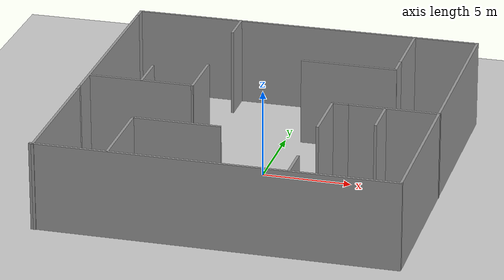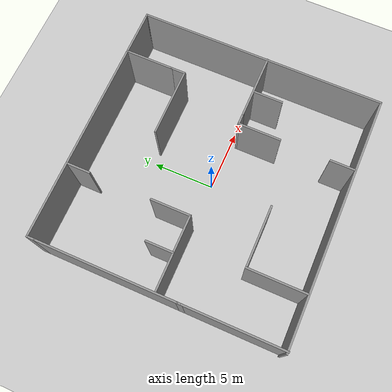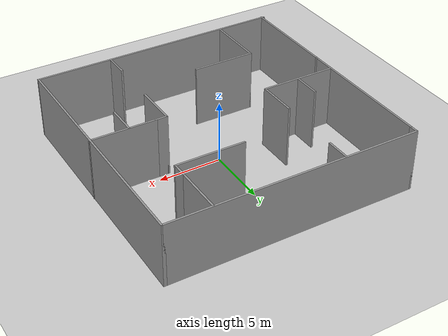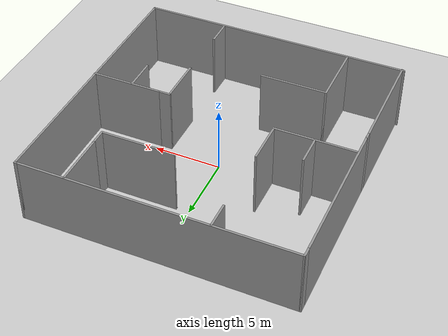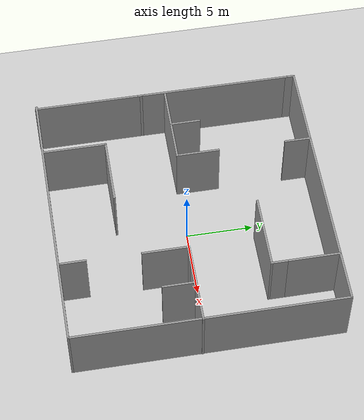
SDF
<sdf version="1.7">
 <world name="default">
  <plugin name="ros_interface_plugin" filename="librotors_gazebo_ros_interface_plugin.so"/>
  <light name="sun" type="directional">
   <pose>0 0 10 0 -0 0</pose>
   <diffuse>0.8 0.8 0.8 1</diffuse>
   <specular>0.2 0.2 0.2 1</specular>
   <attenuation>
    <range>1000</range>
    <constant>0.9</constant>
    <linear>0.01</linear>
    <quadratic>0.001</quadratic>
   </attenuation>
   <direction>-0.5 0.1 -0.9</direction>
   <spot><inner_angle>0</inner_angle><outer_angle>0</outer_angle><falloff>0</falloff></spot>
  </light>
  <model name="ground_plane">
   <static>1</static>
   <link name="link">
    <collision name="collision">
     <geometry><plane><normal>0 0 1</normal><size>100 100</size></plane></geometry>
     <surface><friction><ode><mu>100</mu><mu2>50</mu2></ode></friction></surface>
    </collision>
    <visual name="visual">
     <cast_shadows>0</cast_shadows>
     <geometry><plane><normal>0 0 1</normal><size>100 100</size></plane></geometry>
     <material>
      <script><uri>file://media/materials/scripts/gazebo.material</uri><name>Gazebo/Grey</name></script>
     </material>
    </visual>
   </link>
  </model>
  <gravity>0 0 -9.8</gravity>
  <magnetic_field>6e-06 2.3e-05 -4.2e-05</magnetic_field>
  <atmosphere type="adiabatic"/>
  <physics type="ode">
   <max_step_size>0.001</max_step_size>
   <real_time_factor>1</real_time_factor>
   <real_time_update_rate>1000</real_time_update_rate>
  </physics>
  <scene><ambient>0.4 0.4 0.4 1</ambient><background>0.7 0.7 0.7 1</background><shadows>1</shadows></scene>
  <spherical_coordinates>
   <surface_model>EARTH_WGS84</surface_model>
   <latitude_deg>0</latitude_deg>
   <longitude_deg>0</longitude_deg>
   <elevation>0</elevation>
   <heading_deg>0</heading_deg>
  </spherical_coordinates>
  <model name="Untitled">
   <pose>-0.081069 0.032714 0 0 -0 0</pose>
   <link name="Wall_51">
    <collision name="Wall_51_Collision">
     <geometry><box><size>0.5 0.15 5.0</size></box></geometry>
     <pose>0 0 2.5 0 -0 0</pose>
    </collision>
    <visual name="Wall_51_Visual">
     <pose>0 0 2.5 0 -0 0</pose>
     <geometry><box><size>0.5 0.15 5.0</size></box></geometry>
     <material>
      <script><uri>file://media/materials/scripts/gazebo.material</uri><name>Gazebo/Grey</name></script>
      <ambient>1 1 1 1</ambient>
     </material>
     <meta><layer>0</layer></meta>
    </visual>
    <pose>-9.91461 -1.925 0 0 -0 1.5708</pose>
   </link>
   <link name="Wall_53">
    <collision name="Wall_53_Collision">
     <geometry><box><size>11.25 0.15 5.0</size></box></geometry>
     <pose>0 0 2.5 0 -0 0</pose>
    </collision>
    <visual name="Wall_53_Visual">
     <pose>0 0 2.5 0 -0 0</pose>
     <geometry><box><size>11.25 0.15 5.0</size></box></geometry>
     <material>
      <script><uri>file://media/materials/scripts/gazebo.material</uri><name>Gazebo/Grey</name></script>
      <ambient>1 1 1 1</ambient>
     </material>
     <meta><layer>0</layer></meta>
    </visual>
    <pose>-9.91461 3.8 0 0 -0 1.5708</pose>
   </link>
   <link name="Wall_54">
    <collision name="Wall_54_Collision">
     <geometry><box><size>0.75 0.15 5.0</size></box></geometry>
     <pose>0 0 2.5 0 -0 0</pose>
    </collision>
    <visual name="Wall_54_Visual">
     <pose>0 0 2.5 0 -0 0</pose>
     <geometry><box><size>0.75 0.15 5.0</size></box></geometry>
     <material>
      <script><uri>file://media/materials/scripts/gazebo.material</uri><name>Gazebo/Grey</name></script>
      <ambient>1 1 1 1</ambient>
     </material>
     <meta><layer>0</layer></meta>
    </visual>
    <pose>-9.91461 9.65 0 0 -0 1.5708</pose>
   </link>
   <link name="Wall_55">
    <collision name="Wall_55_Collision">
     <geometry><box><size>20 0.15 5.0</size></box></geometry>
     <pose>0 0 2.5 0 -0 0</pose>
    </collision>
    <visual name="Wall_55_Visual">
     <pose>0 0 2.5 0 -0 0</pose>
     <geometry><box><size>20 0.15 5.0</size></box></geometry>
     <material>
      <script><uri>file://media/materials/scripts/gazebo.material</uri><name>Gazebo/Grey</name></script>
      <ambient>1 1 1 1</ambient>
     </material>
     <meta><layer>0</layer></meta>
    </visual>
    <pose>0.010394 9.95 0 0 -0 0</pose>
   </link>
   <link name="Wall_56">
    <collision name="Wall_56_Collision">
     <geometry><box><size>0.25 0.15 5.0</size></box></geometry>
     <pose>0 0 2.5 0 -0 0</pose>
    </collision>
    <visual name="Wall_56_Visual">
     <pose>0 0 2.5 0 -0 0</pose>
     <geometry><box><size>0.25 0.15 5.0</size></box></geometry>
     <material>
      <script><uri>file://media/materials/scripts/gazebo.material</uri><name>Gazebo/Grey</name></script>
      <ambient>1 1 1 1</ambient>
     </material>
     <meta><layer>0</layer></meta>
    </visual>
    <pose>9.98539 9.95 0 0 -0 0</pose>
   </link>
   <link name="Wall_57">
    <collision name="Wall_57_Collision">
     <geometry><box><size>20 0.15 5.0</size></box></geometry>
     <pose>0 0 2.5 0 -0 0</pose>
    </collision>
    <visual name="Wall_57_Visual">
     <pose>0 0 2.5 0 -0 0</pose>
     <geometry><box><size>20 0.15 5.0</size></box></geometry>
     <material>
      <script><uri>file://media/materials/scripts/gazebo.material</uri><name>Gazebo/Grey</name></script>
      <ambient>1 1 1 1</ambient>
     </material>
     <meta><layer>0</layer></meta>
    </visual>
    <pose>10.0354 0.025 0 0 -0 -1.5708</pose>
   </link>
   <link name="Wall_58">
    <collision name="Wall_58_Collision">
     <geometry><box><size>20.25 0.15 5.0</size></box></geometry>
     <pose>0 0 2.5 0 -0 0</pose>
    </collision>
    <visual name="Wall_58_Visual">
     <pose>0 0 2.5 0 -0 0</pose>
     <geometry><box><size>20.25 0.15 5.0</size></box></geometry>
     <material>
      <script><uri>file://media/materials/scripts/gazebo.material</uri><name>Gazebo/Grey</name></script>
      <ambient>1 1 1 1</ambient>
     </material>
     <meta><layer>0</layer></meta>
    </visual>
    <pose>-0.014606 -9.9 0 0 -0 3.14159</pose>
   </link>
   <link name="Wall_60">
    <collision name="Wall_60_Collision">
     <geometry><box><size>8 0.15 5.0</size></box></geometry>
     <pose>0 0 2.5 0 -0 0</pose>
    </collision>
    <visual name="Wall_60_Visual">
     <pose>0 0 2.5 0 -0 0</pose>
     <geometry><box><size>8 0.15 5.0</size></box></geometry>
     <material>
      <script><uri>file://media/materials/scripts/gazebo.material</uri><name>Gazebo/Grey</name></script>
      <ambient>1 1 1 1</ambient>
     </material>
     <meta><layer>0</layer></meta>
    </visual>
    <pose>-9.91461 -6.025 0 0 -0 -1.5708</pose>
   </link>
   <link name="Wall_65">
    <collision name="Wall_65_Collision">
     <geometry><box><size>5.25 0.15 5.0</size></box></geometry>
     <pose>0 0 2.5 0 -0 0</pose>
    </collision>
    <visual name="Wall_65_Visual">
     <pose>0 0 2.5 0 -0 0</pose>
     <geometry><box><size>5.25 0.15 5.0</size></box></geometry>
     <material>
      <script><uri>file://media/materials/scripts/gazebo.material</uri><name>Gazebo/Grey</name></script>
      <ambient>1 1 1 1</ambient>
     </material>
     <meta><layer>0</layer></meta>
    </visual>
    <pose>7.51461 -0.530956 0 0 -0 3.14159</pose>
   </link>
   <link name="Wall_66">
    <collision name="Wall_66_Collision">
     <geometry><box><size>1 0.15 5.0</size></box></geometry>
     <pose>0 0 2.5 0 -0 0</pose>
    </collision>
    <visual name="Wall_66_Visual">
     <pose>0 0 2.5 0 -0 0</pose>
     <geometry><box><size>1 0.15 5.0</size></box></geometry>
     <material>
      <script><uri>file://media/materials/scripts/gazebo.material</uri><name>Gazebo/Grey</name></script>
      <ambient>1 1 1 1</ambient>
     </material>
     <meta><layer>0</layer></meta>
    </visual>
    <pose>4.53961 -0.530956 0 0 -0 3.14159</pose>
   </link>
   <link name="Wall_67">
    <collision name="Wall_67_Collision">
     <geometry><box><size>3.5 0.15 5.0</size></box></geometry>
     <pose>0 0 2.5 0 -0 0</pose>
    </collision>
    <visual name="Wall_67_Visual">
     <pose>0 0 2.5 0 -0 0</pose>
     <geometry><box><size>3.5 0.15 5.0</size></box></geometry>
     <material>
      <script><uri>file://media/materials/scripts/gazebo.material</uri><name>Gazebo/Grey</name></script>
      <ambient>1 1 1 1</ambient>
     </material>
     <meta><layer>0</layer></meta>
    </visual>
    <pose>4.11461 -2.20596 0 0 -0 -1.5708</pose>
   </link>
   <link name="Wall_69">
    <collision name="Wall_69_Collision">
     <geometry><box><size>2.5 0.15 5.0</size></box></geometry>
     <pose>0 0 2.5 0 -0 0</pose>
    </collision>
    <visual name="Wall_69_Visual">
     <pose>0 0 2.5 0 -0 0</pose>
     <geometry><box><size>2.5 0.15 5.0</size></box></geometry>
     <material>
      <script><uri>file://media/materials/scripts/gazebo.material</uri><name>Gazebo/Grey</name></script>
      <ambient>1 1 1 1</ambient>
     </material>
     <meta><layer>0</layer></meta>
    </visual>
    <pose>7.07441 -1.70596 0 0 -0 -1.5708</pose>
   </link>
   <link name="Wall_71">
    <collision name="Wall_71_Collision">
     <geometry><box><size>4.75 0.15 5.0</size></box></geometry>
     <pose>0 0 2.5 0 -0 0</pose>
    </collision>
    <visual name="Wall_71_Visual">
     <pose>0 0 2.5 0 -0 0</pose>
     <geometry><box><size>4.75 0.15 5.0</size></box></geometry>
     <material>
      <script><uri>file://media/materials/scripts/gazebo.material</uri><name>Gazebo/Grey</name></script>
      <ambient>1 1 1 1</ambient>
     </material>
     <meta><layer>0</layer></meta>
    </visual>
    <pose>-5.81232 -7.49683 0 0 -0 1.5708</pose>
   </link>
   <link name="Wall_73">
    <collision name="Wall_73_Collision">
     <geometry><box><size>5 0.15 5.0</size></box></geometry>
     <pose>0 0 2.5 0 -0 0</pose>
    </collision>
    <visual name="Wall_73_Visual">
     <pose>0 0 2.5 0 -0 0</pose>
     <geometry><box><size>5 0.15 5.0</size></box></geometry>
     <material>
      <script><uri>file://media/materials/scripts/gazebo.material</uri><name>Gazebo/Grey</name></script>
      <ambient>1 1 1 1</ambient>
     </material>
     <meta><layer>0</layer></meta>
    </visual>
    <pose>-3.38732 -5.19683 0 0 -0 0</pose>
   </link>
   <link name="Wall_75">
    <collision name="Wall_75_Collision">
     <geometry><box><size>2 0.15 5.0</size></box></geometry>
     <pose>0 0 2.5 0 -0 0</pose>
    </collision>
    <visual name="Wall_75_Visual">
     <pose>0 0 2.5 0 -0 0</pose>
     <geometry><box><size>2 0.15 5.0</size></box></geometry>
     <material>
      <script><uri>file://media/materials/scripts/gazebo.material</uri><name>Gazebo/Grey</name></script>
      <ambient>1 1 1 1</ambient>
     </material>
     <meta><layer>0</layer></meta>
    </visual>
    <pose>4.05884 -8.87183 0 0 -0 1.5708</pose>
   </link>
   <link name="Wall_77">
    <collision name="Wall_77_Collision">
     <geometry><box><size>6 0.15 5.0</size></box></geometry>
     <pose>0 0 2.5 0 -0 0</pose>
    </collision>
    <visual name="Wall_77_Visual">
     <pose>0 0 2.5 0 -0 0</pose>
     <geometry><box><size>6 0.15 5.0</size></box></geometry>
     <material>
      <script><uri>file://media/materials/scripts/gazebo.material</uri><name>Gazebo/Grey</name></script>
      <ambient>1 1 1 1</ambient>
     </material>
     <meta><layer>0</layer></meta>
    </visual>
    <pose>-6.85196 -0.087492 0 0 -0 0</pose>
   </link>
   <link name="Wall_78">
    <collision name="Wall_78_Collision">
     <geometry><box><size>3.25 0.15 5.0</size></box></geometry>
     <pose>0 0 2.5 0 -0 0</pose>
    </collision>
    <visual name="Wall_78_Visual">
     <pose>0 0 2.5 0 -0 0</pose>
     <geometry><box><size>3.25 0.15 5.0</size></box></geometry>
     <material>
      <script><uri>file://media/materials/scripts/gazebo.material</uri><name>Gazebo/Grey</name></script>
      <ambient>1 1 1 1</ambient>
     </material>
     <meta><layer>0</layer></meta>
    </visual>
    <pose>-3.92696 1.46251 0 0 -0 1.5708</pose>
   </link>
   <link name="Wall_80">
    <collision name="Wall_80_Collision">
     <geometry><box><size>2.25 0.15 5.0</size></box></geometry>
     <pose>0 0 2.5 0 -0 0</pose>
    </collision>
    <visual name="Wall_80_Visual">
     <pose>0 0 2.5 0 -0 0</pose>
     <geometry><box><size>2.25 0.15 5.0</size></box></geometry>
     <material>
      <script><uri>file://media/materials/scripts/gazebo.material</uri><name>Gazebo/Grey</name></script>
      <ambient>1 1 1 1</ambient>
     </material>
     <meta><layer>0</layer></meta>
    </visual>
    <pose>-6.86416 1.00296 0 0 -0 1.5708</pose>
   </link>
   <link name="Wall_82">
    <collision name="Wall_82_Collision">
     <geometry><box><size>2 0.15 5.0</size></box></geometry>
     <pose>0 0 2.5 0 -0 0</pose>
    </collision>
    <visual name="Wall_82_Visual">
     <pose>0 0 2.5 0 -0 0</pose>
     <geometry><box><size>2 0.15 5.0</size></box></geometry>
     <material>
      <script><uri>file://media/materials/scripts/gazebo.material</uri><name>Gazebo/Grey</name></script>
      <ambient>1 1 1 1</ambient>
     </material>
     <meta><layer>0</layer></meta>
    </visual>
    <pose>-3.87779 9.01929 0 0 -0 -1.5708</pose>
   </link>
   <link name="Wall_84">
    <collision name="Wall_84_Collision">
     <geometry><box><size>4 0.15 5.0</size></box></geometry>
     <pose>0 0 2.5 0 -0 0</pose>
    </collision>
    <visual name="Wall_84_Visual">
     <pose>0 0 2.5 0 -0 0</pose>
     <geometry><box><size>4 0.15 5.0</size></box></geometry>
     <material>
      <script><uri>file://media/materials/scripts/gazebo.material</uri><name>Gazebo/Grey</name></script>
      <ambient>1 1 1 1</ambient>
     </material>
     <meta><layer>0</layer></meta>
    </visual>
    <pose>6.40399 8.01929 0 0 -0 -1.5708</pose>
   </link>
   <link name="Wall_86">
    <collision name="Wall_86_Collision">
     <geometry><box><size>1.25 0.15 5.0</size></box></geometry>
     <pose>0 0 2.5 0 -0 0</pose>
    </collision>
    <visual name="Wall_86_Visual">
     <pose>0 0 2.5 0 -0 0</pose>
     <geometry><box><size>1.25 0.15 5.0</size></box></geometry>
     <material>
      <script><uri>file://media/materials/scripts/gazebo.material</uri><name>Gazebo/Grey</name></script>
      <ambient>1 1 1 1</ambient>
     </material>
     <meta><layer>0</layer></meta>
    </visual>
    <pose>6.40399 5.54429 0 0 -0 -1.5708</pose>
   </link>
   <link name="Wall_87">
    <collision name="Wall_87_Collision">
     <geometry><box><size>5.5 0.15 5.0</size></box></geometry>
     <pose>0 0 2.5 0 -0 0</pose>
    </collision>
    <visual name="Wall_87_Visual">
     <pose>0 0 2.5 0 -0 0</pose>
     <geometry><box><size>5.5 0.15 5.0</size></box></geometry>
     <material>
      <script><uri>file://media/materials/scripts/gazebo.material</uri><name>Gazebo/Grey</name></script>
      <ambient>1 1 1 1</ambient>
     </material>
     <meta><layer>0</layer></meta>
    </visual>
    <pose>3.72899 4.99429 0 0 -0 3.14159</pose>
   </link>
   <static>1</static>
  </model>
 </world>
</sdf>
